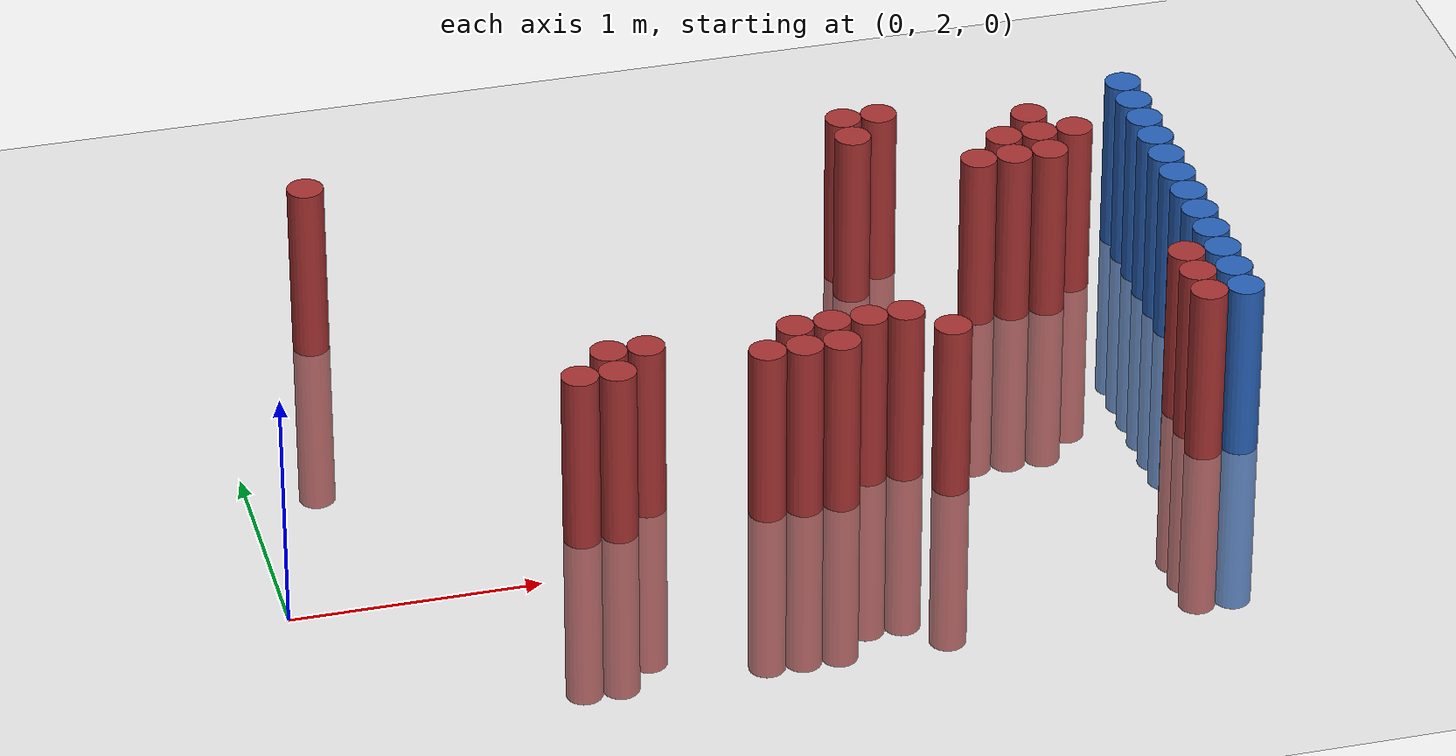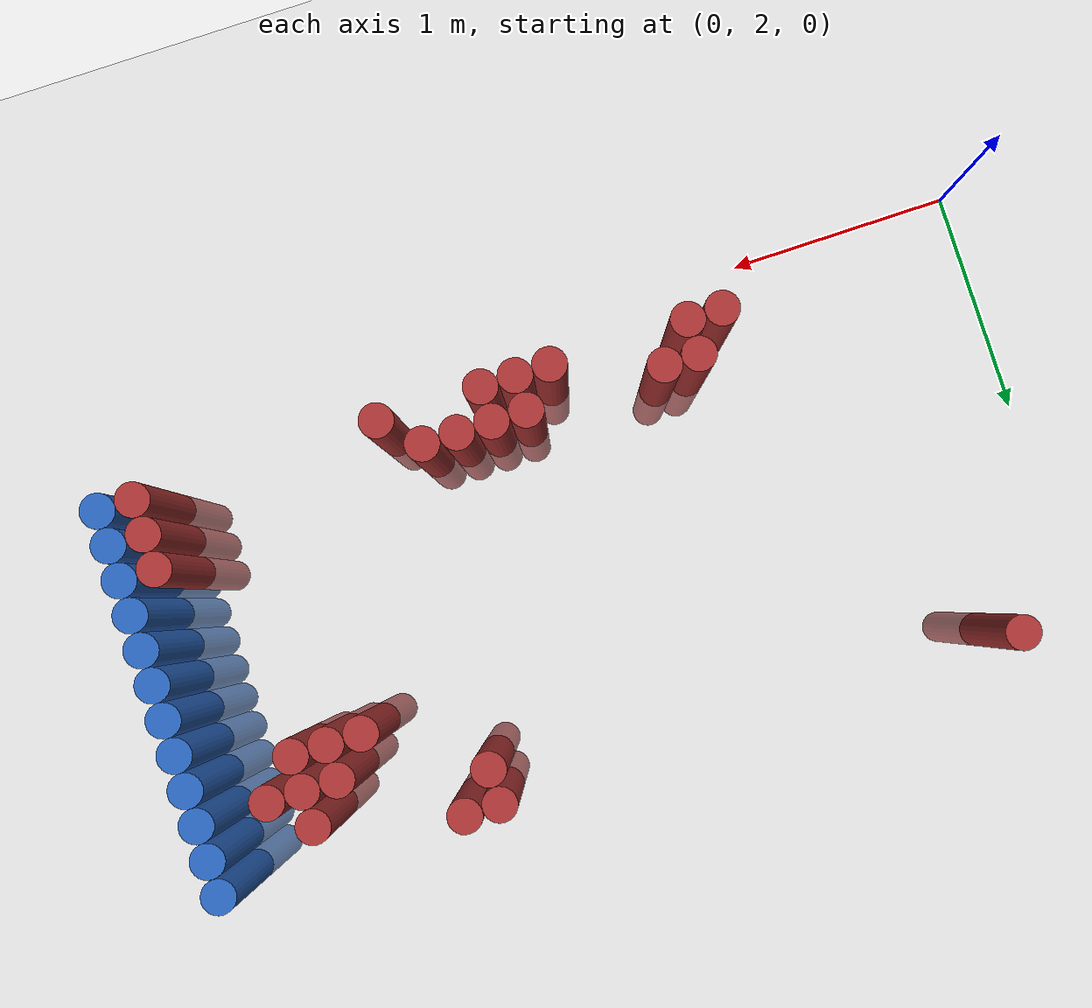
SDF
<sdf version="1.6">
 <world name="default">
  <model name="ground_plane">
   <static>1</static>
   <link name="link">
    <collision name="collision">
     <geometry><plane><normal>0 0 1</normal><size>100 100</size></plane></geometry>
     <surface><friction><ode><mu>100</mu><mu2>50</mu2></ode></friction></surface>
    </collision>
    <visual name="visual">
     <cast_shadows>0</cast_shadows>
     <geometry><plane><normal>0 0 1</normal><size>100 100</size></plane></geometry>
     <material>
      <script><uri>file://media/materials/scripts/gazebo.material</uri><name>Gazebo/Grey</name></script>
     </material>
    </visual>
   </link>
  </model>
  <model name="unit_cylinder_144">
   <static>1</static>
   <pose>3.925000 2.275000 0.000000 0.000000 0.000000 0.000000</pose>
   <link name="link">
    <inertial>
     <mass>1</mass>
     <inertia><ixx>0.145833</ixx><ixy>0</ixy><ixz>0</ixz><iyy>0.145833</iyy><iyz>0</iyz><izz>0.125</izz></inertia>
    </inertial>
    <collision name="collision">
     <geometry><cylinder><radius>0.075000</radius><length>1.5</length></cylinder></geometry>
    </collision>
    <visual name="visual">
     <geometry><cylinder><radius>0.075000</radius><length>1.5</length></cylinder></geometry>
     <material>
      <ambient>0.152000 0.379000 0.720000 1</ambient>
      <diffuse>0.152000 0.379000 0.720000 1</diffuse>
     </material>
     <material>
      <script><name>Gazebo/Grey</name><uri>file://media/materials/scripts/gazebo.material</uri></script>
     </material>
    </visual>
   </link>
  </model>
  <model name="unit_cylinder_146">
   <static>1</static>
   <pose>3.925000 2.425000 0.000000 0.000000 0.000000 0.000000</pose>
   <link name="link">
    <inertial>
     <mass>1</mass>
     <inertia><ixx>0.145833</ixx><ixy>0</ixy><ixz>0</ixz><iyy>0.145833</iyy><iyz>0</iyz><izz>0.125</izz></inertia>
    </inertial>
    <collision name="collision">
     <geometry><cylinder><radius>0.075000</radius><length>1.5</length></cylinder></geometry>
    </collision>
    <visual name="visual">
     <geometry><cylinder><radius>0.075000</radius><length>1.5</length></cylinder></geometry>
     <material>
      <ambient>0.152000 0.379000 0.720000 1</ambient>
      <diffuse>0.152000 0.379000 0.720000 1</diffuse>
     </material>
     <material>
      <script><name>Gazebo/Grey</name><uri>file://media/materials/scripts/gazebo.material</uri></script>
     </material>
    </visual>
   </link>
  </model>
  <model name="unit_cylinder_148">
   <static>1</static>
   <pose>3.925000 2.575000 0.000000 0.000000 0.000000 0.000000</pose>
   <link name="link">
    <inertial>
     <mass>1</mass>
     <inertia><ixx>0.145833</ixx><ixy>0</ixy><ixz>0</ixz><iyy>0.145833</iyy><iyz>0</iyz><izz>0.125</izz></inertia>
    </inertial>
    <collision name="collision">
     <geometry><cylinder><radius>0.075000</radius><length>1.5</length></cylinder></geometry>
    </collision>
    <visual name="visual">
     <geometry><cylinder><radius>0.075000</radius><length>1.5</length></cylinder></geometry>
     <material>
      <ambient>0.152000 0.379000 0.720000 1</ambient>
      <diffuse>0.152000 0.379000 0.720000 1</diffuse>
     </material>
     <material>
      <script><name>Gazebo/Grey</name><uri>file://media/materials/scripts/gazebo.material</uri></script>
     </material>
    </visual>
   </link>
  </model>
  <model name="unit_cylinder_150">
   <static>1</static>
   <pose>3.925000 2.725000 0.000000 0.000000 0.000000 0.000000</pose>
   <link name="link">
    <inertial>
     <mass>1</mass>
     <inertia><ixx>0.145833</ixx><ixy>0</ixy><ixz>0</ixz><iyy>0.145833</iyy><iyz>0</iyz><izz>0.125</izz></inertia>
    </inertial>
    <collision name="collision">
     <geometry><cylinder><radius>0.075000</radius><length>1.5</length></cylinder></geometry>
    </collision>
    <visual name="visual">
     <geometry><cylinder><radius>0.075000</radius><length>1.5</length></cylinder></geometry>
     <material>
      <ambient>0.152000 0.379000 0.720000 1</ambient>
      <diffuse>0.152000 0.379000 0.720000 1</diffuse>
     </material>
     <material>
      <script><name>Gazebo/Grey</name><uri>file://media/materials/scripts/gazebo.material</uri></script>
     </material>
    </visual>
   </link>
  </model>
  <model name="unit_cylinder_152">
   <static>1</static>
   <pose>3.925000 2.875000 0.000000 0.000000 0.000000 0.000000</pose>
   <link name="link">
    <inertial>
     <mass>1</mass>
     <inertia><ixx>0.145833</ixx><ixy>0</ixy><ixz>0</ixz><iyy>0.145833</iyy><iyz>0</iyz><izz>0.125</izz></inertia>
    </inertial>
    <collision name="collision">
     <geometry><cylinder><radius>0.075000</radius><length>1.5</length></cylinder></geometry>
    </collision>
    <visual name="visual">
     <geometry><cylinder><radius>0.075000</radius><length>1.5</length></cylinder></geometry>
     <material>
      <ambient>0.152000 0.379000 0.720000 1</ambient>
      <diffuse>0.152000 0.379000 0.720000 1</diffuse>
     </material>
     <material>
      <script><name>Gazebo/Grey</name><uri>file://media/materials/scripts/gazebo.material</uri></script>
     </material>
    </visual>
   </link>
  </model>
  <model name="unit_cylinder_154">
   <static>1</static>
   <pose>3.925000 3.025000 0.000000 0.000000 0.000000 0.000000</pose>
   <link name="link">
    <inertial>
     <mass>1</mass>
     <inertia><ixx>0.145833</ixx><ixy>0</ixy><ixz>0</ixz><iyy>0.145833</iyy><iyz>0</iyz><izz>0.125</izz></inertia>
    </inertial>
    <collision name="collision">
     <geometry><cylinder><radius>0.075000</radius><length>1.5</length></cylinder></geometry>
    </collision>
    <visual name="visual">
     <geometry><cylinder><radius>0.075000</radius><length>1.5</length></cylinder></geometry>
     <material>
      <ambient>0.152000 0.379000 0.720000 1</ambient>
      <diffuse>0.152000 0.379000 0.720000 1</diffuse>
     </material>
     <material>
      <script><name>Gazebo/Grey</name><uri>file://media/materials/scripts/gazebo.material</uri></script>
     </material>
    </visual>
   </link>
  </model>
  <model name="unit_cylinder_156">
   <static>1</static>
   <pose>3.925000 3.175000 0.000000 0.000000 0.000000 0.000000</pose>
   <link name="link">
    <inertial>
     <mass>1</mass>
     <inertia><ixx>0.145833</ixx><ixy>0</ixy><ixz>0</ixz><iyy>0.145833</iyy><iyz>0</iyz><izz>0.125</izz></inertia>
    </inertial>
    <collision name="collision">
     <geometry><cylinder><radius>0.075000</radius><length>1.5</length></cylinder></geometry>
    </collision>
    <visual name="visual">
     <geometry><cylinder><radius>0.075000</radius><length>1.5</length></cylinder></geometry>
     <material>
      <ambient>0.152000 0.379000 0.720000 1</ambient>
      <diffuse>0.152000 0.379000 0.720000 1</diffuse>
     </material>
     <material>
      <script><name>Gazebo/Grey</name><uri>file://media/materials/scripts/gazebo.material</uri></script>
     </material>
    </visual>
   </link>
  </model>
  <model name="unit_cylinder_158">
   <static>1</static>
   <pose>3.925000 3.325000 0.000000 0.000000 0.000000 0.000000</pose>
   <link name="link">
    <inertial>
     <mass>1</mass>
     <inertia><ixx>0.145833</ixx><ixy>0</ixy><ixz>0</ixz><iyy>0.145833</iyy><iyz>0</iyz><izz>0.125</izz></inertia>
    </inertial>
    <collision name="collision">
     <geometry><cylinder><radius>0.075000</radius><length>1.5</length></cylinder></geometry>
    </collision>
    <visual name="visual">
     <geometry><cylinder><radius>0.075000</radius><length>1.5</length></cylinder></geometry>
     <material>
      <ambient>0.152000 0.379000 0.720000 1</ambient>
      <diffuse>0.152000 0.379000 0.720000 1</diffuse>
     </material>
     <material>
      <script><name>Gazebo/Grey</name><uri>file://media/materials/scripts/gazebo.material</uri></script>
     </material>
    </visual>
   </link>
  </model>
  <model name="unit_cylinder_160">
   <static>1</static>
   <pose>3.925000 3.475000 0.000000 0.000000 0.000000 0.000000</pose>
   <link name="link">
    <inertial>
     <mass>1</mass>
     <inertia><ixx>0.145833</ixx><ixy>0</ixy><ixz>0</ixz><iyy>0.145833</iyy><iyz>0</iyz><izz>0.125</izz></inertia>
    </inertial>
    <collision name="collision">
     <geometry><cylinder><radius>0.075000</radius><length>1.5</length></cylinder></geometry>
    </collision>
    <visual name="visual">
     <geometry><cylinder><radius>0.075000</radius><length>1.5</length></cylinder></geometry>
     <material>
      <ambient>0.152000 0.379000 0.720000 1</ambient>
      <diffuse>0.152000 0.379000 0.720000 1</diffuse>
     </material>
     <material>
      <script><name>Gazebo/Grey</name><uri>file://media/materials/scripts/gazebo.material</uri></script>
     </material>
    </visual>
   </link>
  </model>
  <model name="unit_cylinder_162">
   <static>1</static>
   <pose>3.925000 3.625000 0.000000 0.000000 0.000000 0.000000</pose>
   <link name="link">
    <inertial>
     <mass>1</mass>
     <inertia><ixx>0.145833</ixx><ixy>0</ixy><ixz>0</ixz><iyy>0.145833</iyy><iyz>0</iyz><izz>0.125</izz></inertia>
    </inertial>
    <collision name="collision">
     <geometry><cylinder><radius>0.075000</radius><length>1.5</length></cylinder></geometry>
    </collision>
    <visual name="visual">
     <geometry><cylinder><radius>0.075000</radius><length>1.5</length></cylinder></geometry>
     <material>
      <ambient>0.152000 0.379000 0.720000 1</ambient>
      <diffuse>0.152000 0.379000 0.720000 1</diffuse>
     </material>
     <material>
      <script><name>Gazebo/Grey</name><uri>file://media/materials/scripts/gazebo.material</uri></script>
     </material>
    </visual>
   </link>
  </model>
  <model name="unit_cylinder_164">
   <static>1</static>
   <pose>3.925000 3.775000 0.000000 0.000000 0.000000 0.000000</pose>
   <link name="link">
    <inertial>
     <mass>1</mass>
     <inertia><ixx>0.145833</ixx><ixy>0</ixy><ixz>0</ixz><iyy>0.145833</iyy><iyz>0</iyz><izz>0.125</izz></inertia>
    </inertial>
    <collision name="collision">
     <geometry><cylinder><radius>0.075000</radius><length>1.5</length></cylinder></geometry>
    </collision>
    <visual name="visual">
     <geometry><cylinder><radius>0.075000</radius><length>1.5</length></cylinder></geometry>
     <material>
      <ambient>0.152000 0.379000 0.720000 1</ambient>
      <diffuse>0.152000 0.379000 0.720000 1</diffuse>
     </material>
     <material>
      <script><name>Gazebo/Grey</name><uri>file://media/materials/scripts/gazebo.material</uri></script>
     </material>
    </visual>
   </link>
  </model>
  <model name="unit_cylinder_166">
   <static>1</static>
   <pose>3.925000 3.925000 0.000000 0.000000 0.000000 0.000000</pose>
   <link name="link">
    <inertial>
     <mass>1</mass>
     <inertia><ixx>0.145833</ixx><ixy>0</ixy><ixz>0</ixz><iyy>0.145833</iyy><iyz>0</iyz><izz>0.125</izz></inertia>
    </inertial>
    <collision name="collision">
     <geometry><cylinder><radius>0.075000</radius><length>1.5</length></cylinder></geometry>
    </collision>
    <visual name="visual">
     <geometry><cylinder><radius>0.075000</radius><length>1.5</length></cylinder></geometry>
     <material>
      <ambient>0.152000 0.379000 0.720000 1</ambient>
      <diffuse>0.152000 0.379000 0.720000 1</diffuse>
     </material>
     <material>
      <script><name>Gazebo/Grey</name><uri>file://media/materials/scripts/gazebo.material</uri></script>
     </material>
    </visual>
   </link>
  </model>
  <model name="unit_cylinder_395">
   <static>1</static>
   <pose>0.475000 3.925000 0.000000 0.000000 0.000000 0.000000</pose>
   <link name="link">
    <inertial>
     <mass>1</mass>
     <inertia><ixx>0.145833</ixx><ixy>0</ixy><ixz>0</ixz><iyy>0.145833</iyy><iyz>0</iyz><izz>0.125</izz></inertia>
    </inertial>
    <collision name="collision">
     <geometry><cylinder><radius>0.075000</radius><length>1.5</length></cylinder></geometry>
    </collision>
    <visual name="visual">
     <geometry><cylinder><radius>0.075000</radius><length>1.5</length></cylinder></geometry>
     <material>
      <ambient>0.648000 0.192000 0.192000 1</ambient>
      <diffuse>0.648000 0.192000 0.192000 1</diffuse>
     </material>
     <material>
      <script><name>Gazebo/Grey</name><uri>file://media/materials/scripts/gazebo.material</uri></script>
     </material>
    </visual>
   </link>
  </model>
  <model name="unit_cylinder_412">
   <static>1</static>
   <pose>1.225000 2.275000 0.000000 0.000000 0.000000 0.000000</pose>
   <link name="link">
    <inertial>
     <mass>1</mass>
     <inertia><ixx>0.145833</ixx><ixy>0</ixy><ixz>0</ixz><iyy>0.145833</iyy><iyz>0</iyz><izz>0.125</izz></inertia>
    </inertial>
    <collision name="collision">
     <geometry><cylinder><radius>0.075000</radius><length>1.5</length></cylinder></geometry>
    </collision>
    <visual name="visual">
     <geometry><cylinder><radius>0.075000</radius><length>1.5</length></cylinder></geometry>
     <material>
      <ambient>0.648000 0.192000 0.192000 1</ambient>
      <diffuse>0.648000 0.192000 0.192000 1</diffuse>
     </material>
     <material>
      <script><name>Gazebo/Grey</name><uri>file://media/materials/scripts/gazebo.material</uri></script>
     </material>
    </visual>
   </link>
  </model>
  <model name="unit_cylinder_416">
   <static>1</static>
   <pose>1.375000 2.275000 0.000000 0.000000 0.000000 0.000000</pose>
   <link name="link">
    <inertial>
     <mass>1</mass>
     <inertia><ixx>0.145833</ixx><ixy>0</ixy><ixz>0</ixz><iyy>0.145833</iyy><iyz>0</iyz><izz>0.125</izz></inertia>
    </inertial>
    <collision name="collision">
     <geometry><cylinder><radius>0.075000</radius><length>1.5</length></cylinder></geometry>
    </collision>
    <visual name="visual">
     <geometry><cylinder><radius>0.075000</radius><length>1.5</length></cylinder></geometry>
     <material>
      <ambient>0.648000 0.192000 0.192000 1</ambient>
      <diffuse>0.648000 0.192000 0.192000 1</diffuse>
     </material>
     <material>
      <script><name>Gazebo/Grey</name><uri>file://media/materials/scripts/gazebo.material</uri></script>
     </material>
    </visual>
   </link>
  </model>
  <model name="unit_cylinder_417">
   <static>1</static>
   <pose>1.375000 2.425000 0.000000 0.000000 0.000000 0.000000</pose>
   <link name="link">
    <inertial>
     <mass>1</mass>
     <inertia><ixx>0.145833</ixx><ixy>0</ixy><ixz>0</ixz><iyy>0.145833</iyy><iyz>0</iyz><izz>0.125</izz></inertia>
    </inertial>
    <collision name="collision">
     <geometry><cylinder><radius>0.075000</radius><length>1.5</length></cylinder></geometry>
    </collision>
    <visual name="visual">
     <geometry><cylinder><radius>0.075000</radius><length>1.5</length></cylinder></geometry>
     <material>
      <ambient>0.648000 0.192000 0.192000 1</ambient>
      <diffuse>0.648000 0.192000 0.192000 1</diffuse>
     </material>
     <material>
      <script><name>Gazebo/Grey</name><uri>file://media/materials/scripts/gazebo.material</uri></script>
     </material>
    </visual>
   </link>
  </model>
  <model name="unit_cylinder_422">
   <static>1</static>
   <pose>1.525000 2.425000 0.000000 0.000000 0.000000 0.000000</pose>
   <link name="link">
    <inertial>
     <mass>1</mass>
     <inertia><ixx>0.145833</ixx><ixy>0</ixy><ixz>0</ixz><iyy>0.145833</iyy><iyz>0</iyz><izz>0.125</izz></inertia>
    </inertial>
    <collision name="collision">
     <geometry><cylinder><radius>0.075000</radius><length>1.5</length></cylinder></geometry>
    </collision>
    <visual name="visual">
     <geometry><cylinder><radius>0.075000</radius><length>1.5</length></cylinder></geometry>
     <material>
      <ambient>0.648000 0.192000 0.192000 1</ambient>
      <diffuse>0.648000 0.192000 0.192000 1</diffuse>
     </material>
     <material>
      <script><name>Gazebo/Grey</name><uri>file://media/materials/scripts/gazebo.material</uri></script>
     </material>
    </visual>
   </link>
  </model>
  <model name="unit_cylinder_435">
   <static>1</static>
   <pose>1.975000 2.275000 0.000000 0.000000 0.000000 0.000000</pose>
   <link name="link">
    <inertial>
     <mass>1</mass>
     <inertia><ixx>0.145833</ixx><ixy>0</ixy><ixz>0</ixz><iyy>0.145833</iyy><iyz>0</iyz><izz>0.125</izz></inertia>
    </inertial>
    <collision name="collision">
     <geometry><cylinder><radius>0.075000</radius><length>1.5</length></cylinder></geometry>
    </collision>
    <visual name="visual">
     <geometry><cylinder><radius>0.075000</radius><length>1.5</length></cylinder></geometry>
     <material>
      <ambient>0.648000 0.192000 0.192000 1</ambient>
      <diffuse>0.648000 0.192000 0.192000 1</diffuse>
     </material>
     <material>
      <script><name>Gazebo/Grey</name><uri>file://media/materials/scripts/gazebo.material</uri></script>
     </material>
    </visual>
   </link>
  </model>
  <model name="unit_cylinder_440">
   <static>1</static>
   <pose>2.125000 2.275000 0.000000 0.000000 0.000000 0.000000</pose>
   <link name="link">
    <inertial>
     <mass>1</mass>
     <inertia><ixx>0.145833</ixx><ixy>0</ixy><ixz>0</ixz><iyy>0.145833</iyy><iyz>0</iyz><izz>0.125</izz></inertia>
    </inertial>
    <collision name="collision">
     <geometry><cylinder><radius>0.075000</radius><length>1.5</length></cylinder></geometry>
    </collision>
    <visual name="visual">
     <geometry><cylinder><radius>0.075000</radius><length>1.5</length></cylinder></geometry>
     <material>
      <ambient>0.648000 0.192000 0.192000 1</ambient>
      <diffuse>0.648000 0.192000 0.192000 1</diffuse>
     </material>
     <material>
      <script><name>Gazebo/Grey</name><uri>file://media/materials/scripts/gazebo.material</uri></script>
     </material>
    </visual>
   </link>
  </model>
  <model name="unit_cylinder_441">
   <static>1</static>
   <pose>2.125000 2.425000 0.000000 0.000000 0.000000 0.000000</pose>
   <link name="link">
    <inertial>
     <mass>1</mass>
     <inertia><ixx>0.145833</ixx><ixy>0</ixy><ixz>0</ixz><iyy>0.145833</iyy><iyz>0</iyz><izz>0.125</izz></inertia>
    </inertial>
    <collision name="collision">
     <geometry><cylinder><radius>0.075000</radius><length>1.5</length></cylinder></geometry>
    </collision>
    <visual name="visual">
     <geometry><cylinder><radius>0.075000</radius><length>1.5</length></cylinder></geometry>
     <material>
      <ambient>0.648000 0.192000 0.192000 1</ambient>
      <diffuse>0.648000 0.192000 0.192000 1</diffuse>
     </material>
     <material>
      <script><name>Gazebo/Grey</name><uri>file://media/materials/scripts/gazebo.material</uri></script>
     </material>
    </visual>
   </link>
  </model>
  <model name="unit_cylinder_442">
   <static>1</static>
   <pose>2.275000 2.275000 0.000000 0.000000 0.000000 0.000000</pose>
   <link name="link">
    <inertial>
     <mass>1</mass>
     <inertia><ixx>0.145833</ixx><ixy>0</ixy><ixz>0</ixz><iyy>0.145833</iyy><iyz>0</iyz><izz>0.125</izz></inertia>
    </inertial>
    <collision name="collision">
     <geometry><cylinder><radius>0.075000</radius><length>1.5</length></cylinder></geometry>
    </collision>
    <visual name="visual">
     <geometry><cylinder><radius>0.075000</radius><length>1.5</length></cylinder></geometry>
     <material>
      <ambient>0.648000 0.192000 0.192000 1</ambient>
      <diffuse>0.648000 0.192000 0.192000 1</diffuse>
     </material>
     <material>
      <script><name>Gazebo/Grey</name><uri>file://media/materials/scripts/gazebo.material</uri></script>
     </material>
    </visual>
   </link>
  </model>
  <model name="unit_cylinder_443">
   <static>1</static>
   <pose>2.275000 2.425000 0.000000 0.000000 0.000000 0.000000</pose>
   <link name="link">
    <inertial>
     <mass>1</mass>
     <inertia><ixx>0.145833</ixx><ixy>0</ixy><ixz>0</ixz><iyy>0.145833</iyy><iyz>0</iyz><izz>0.125</izz></inertia>
    </inertial>
    <collision name="collision">
     <geometry><cylinder><radius>0.075000</radius><length>1.5</length></cylinder></geometry>
    </collision>
    <visual name="visual">
     <geometry><cylinder><radius>0.075000</radius><length>1.5</length></cylinder></geometry>
     <material>
      <ambient>0.648000 0.192000 0.192000 1</ambient>
      <diffuse>0.648000 0.192000 0.192000 1</diffuse>
     </material>
     <material>
      <script><name>Gazebo/Grey</name><uri>file://media/materials/scripts/gazebo.material</uri></script>
     </material>
    </visual>
   </link>
  </model>
  <model name="unit_cylinder_446">
   <static>1</static>
   <pose>2.425000 2.425000 0.000000 0.000000 0.000000 0.000000</pose>
   <link name="link">
    <inertial>
     <mass>1</mass>
     <inertia><ixx>0.145833</ixx><ixy>0</ixy><ixz>0</ixz><iyy>0.145833</iyy><iyz>0</iyz><izz>0.125</izz></inertia>
    </inertial>
    <collision name="collision">
     <geometry><cylinder><radius>0.075000</radius><length>1.5</length></cylinder></geometry>
    </collision>
    <visual name="visual">
     <geometry><cylinder><radius>0.075000</radius><length>1.5</length></cylinder></geometry>
     <material>
      <ambient>0.648000 0.192000 0.192000 1</ambient>
      <diffuse>0.648000 0.192000 0.192000 1</diffuse>
     </material>
     <material>
      <script><name>Gazebo/Grey</name><uri>file://media/materials/scripts/gazebo.material</uri></script>
     </material>
    </visual>
   </link>
  </model>
  <model name="unit_cylinder_456">
   <static>1</static>
   <pose>2.575000 2.425000 0.000000 0.000000 0.000000 0.000000</pose>
   <link name="link">
    <inertial>
     <mass>1</mass>
     <inertia><ixx>0.145833</ixx><ixy>0</ixy><ixz>0</ixz><iyy>0.145833</iyy><iyz>0</iyz><izz>0.125</izz></inertia>
    </inertial>
    <collision name="collision">
     <geometry><cylinder><radius>0.075000</radius><length>1.5</length></cylinder></geometry>
    </collision>
    <visual name="visual">
     <geometry><cylinder><radius>0.075000</radius><length>1.5</length></cylinder></geometry>
     <material>
      <ambient>0.648000 0.192000 0.192000 1</ambient>
      <diffuse>0.648000 0.192000 0.192000 1</diffuse>
     </material>
     <material>
      <script><name>Gazebo/Grey</name><uri>file://media/materials/scripts/gazebo.material</uri></script>
     </material>
    </visual>
   </link>
  </model>
  <model name="unit_cylinder_467">
   <static>1</static>
   <pose>2.725000 2.275000 0.000000 0.000000 0.000000 0.000000</pose>
   <link name="link">
    <inertial>
     <mass>1</mass>
     <inertia><ixx>0.145833</ixx><ixy>0</ixy><ixz>0</ixz><iyy>0.145833</iyy><iyz>0</iyz><izz>0.125</izz></inertia>
    </inertial>
    <collision name="collision">
     <geometry><cylinder><radius>0.075000</radius><length>1.5</length></cylinder></geometry>
    </collision>
    <visual name="visual">
     <geometry><cylinder><radius>0.075000</radius><length>1.5</length></cylinder></geometry>
     <material>
      <ambient>0.648000 0.192000 0.192000 1</ambient>
      <diffuse>0.648000 0.192000 0.192000 1</diffuse>
     </material>
     <material>
      <script><name>Gazebo/Grey</name><uri>file://media/materials/scripts/gazebo.material</uri></script>
     </material>
    </visual>
   </link>
  </model>
  <model name="unit_cylinder_468">
   <static>1</static>
   <pose>2.725000 3.775000 0.000000 0.000000 0.000000 0.000000</pose>
   <link name="link">
    <inertial>
     <mass>1</mass>
     <inertia><ixx>0.145833</ixx><ixy>0</ixy><ixz>0</ixz><iyy>0.145833</iyy><iyz>0</iyz><izz>0.125</izz></inertia>
    </inertial>
    <collision name="collision">
     <geometry><cylinder><radius>0.075000</radius><length>1.5</length></cylinder></geometry>
    </collision>
    <visual name="visual">
     <geometry><cylinder><radius>0.075000</radius><length>1.5</length></cylinder></geometry>
     <material>
      <ambient>0.648000 0.192000 0.192000 1</ambient>
      <diffuse>0.648000 0.192000 0.192000 1</diffuse>
     </material>
     <material>
      <script><name>Gazebo/Grey</name><uri>file://media/materials/scripts/gazebo.material</uri></script>
     </material>
    </visual>
   </link>
  </model>
  <model name="unit_cylinder_469">
   <static>1</static>
   <pose>2.725000 3.925000 0.000000 0.000000 0.000000 0.000000</pose>
   <link name="link">
    <inertial>
     <mass>1</mass>
     <inertia><ixx>0.145833</ixx><ixy>0</ixy><ixz>0</ixz><iyy>0.145833</iyy><iyz>0</iyz><izz>0.125</izz></inertia>
    </inertial>
    <collision name="collision">
     <geometry><cylinder><radius>0.075000</radius><length>1.5</length></cylinder></geometry>
    </collision>
    <visual name="visual">
     <geometry><cylinder><radius>0.075000</radius><length>1.5</length></cylinder></geometry>
     <material>
      <ambient>0.648000 0.192000 0.192000 1</ambient>
      <diffuse>0.648000 0.192000 0.192000 1</diffuse>
     </material>
     <material>
      <script><name>Gazebo/Grey</name><uri>file://media/materials/scripts/gazebo.material</uri></script>
     </material>
    </visual>
   </link>
  </model>
  <model name="unit_cylinder_479">
   <static>1</static>
   <pose>2.875000 3.925000 0.000000 0.000000 0.000000 0.000000</pose>
   <link name="link">
    <inertial>
     <mass>1</mass>
     <inertia><ixx>0.145833</ixx><ixy>0</ixy><ixz>0</ixz><iyy>0.145833</iyy><iyz>0</iyz><izz>0.125</izz></inertia>
    </inertial>
    <collision name="collision">
     <geometry><cylinder><radius>0.075000</radius><length>1.5</length></cylinder></geometry>
    </collision>
    <visual name="visual">
     <geometry><cylinder><radius>0.075000</radius><length>1.5</length></cylinder></geometry>
     <material>
      <ambient>0.648000 0.192000 0.192000 1</ambient>
      <diffuse>0.648000 0.192000 0.192000 1</diffuse>
     </material>
     <material>
      <script><name>Gazebo/Grey</name><uri>file://media/materials/scripts/gazebo.material</uri></script>
     </material>
    </visual>
   </link>
  </model>
  <model name="unit_cylinder_485">
   <static>1</static>
   <pose>3.175000 3.475000 0.000000 0.000000 0.000000 0.000000</pose>
   <link name="link">
    <inertial>
     <mass>1</mass>
     <inertia><ixx>0.145833</ixx><ixy>0</ixy><ixz>0</ixz><iyy>0.145833</iyy><iyz>0</iyz><izz>0.125</izz></inertia>
    </inertial>
    <collision name="collision">
     <geometry><cylinder><radius>0.075000</radius><length>1.5</length></cylinder></geometry>
    </collision>
    <visual name="visual">
     <geometry><cylinder><radius>0.075000</radius><length>1.5</length></cylinder></geometry>
     <material>
      <ambient>0.648000 0.192000 0.192000 1</ambient>
      <diffuse>0.648000 0.192000 0.192000 1</diffuse>
     </material>
     <material>
      <script><name>Gazebo/Grey</name><uri>file://media/materials/scripts/gazebo.material</uri></script>
     </material>
    </visual>
   </link>
  </model>
  <model name="unit_cylinder_486">
   <static>1</static>
   <pose>3.325000 3.475000 0.000000 0.000000 0.000000 0.000000</pose>
   <link name="link">
    <inertial>
     <mass>1</mass>
     <inertia><ixx>0.145833</ixx><ixy>0</ixy><ixz>0</ixz><iyy>0.145833</iyy><iyz>0</iyz><izz>0.125</izz></inertia>
    </inertial>
    <collision name="collision">
     <geometry><cylinder><radius>0.075000</radius><length>1.5</length></cylinder></geometry>
    </collision>
    <visual name="visual">
     <geometry><cylinder><radius>0.075000</radius><length>1.5</length></cylinder></geometry>
     <material>
      <ambient>0.648000 0.192000 0.192000 1</ambient>
      <diffuse>0.648000 0.192000 0.192000 1</diffuse>
     </material>
     <material>
      <script><name>Gazebo/Grey</name><uri>file://media/materials/scripts/gazebo.material</uri></script>
     </material>
    </visual>
   </link>
  </model>
  <model name="unit_cylinder_487">
   <static>1</static>
   <pose>3.325000 3.625000 0.000000 0.000000 0.000000 0.000000</pose>
   <link name="link">
    <inertial>
     <mass>1</mass>
     <inertia><ixx>0.145833</ixx><ixy>0</ixy><ixz>0</ixz><iyy>0.145833</iyy><iyz>0</iyz><izz>0.125</izz></inertia>
    </inertial>
    <collision name="collision">
     <geometry><cylinder><radius>0.075000</radius><length>1.5</length></cylinder></geometry>
    </collision>
    <visual name="visual">
     <geometry><cylinder><radius>0.075000</radius><length>1.5</length></cylinder></geometry>
     <material>
      <ambient>0.648000 0.192000 0.192000 1</ambient>
      <diffuse>0.648000 0.192000 0.192000 1</diffuse>
     </material>
     <material>
      <script><name>Gazebo/Grey</name><uri>file://media/materials/scripts/gazebo.material</uri></script>
     </material>
    </visual>
   </link>
  </model>
  <model name="unit_cylinder_488">
   <static>1</static>
   <pose>3.475000 3.475000 0.000000 0.000000 0.000000 0.000000</pose>
   <link name="link">
    <inertial>
     <mass>1</mass>
     <inertia><ixx>0.145833</ixx><ixy>0</ixy><ixz>0</ixz><iyy>0.145833</iyy><iyz>0</iyz><izz>0.125</izz></inertia>
    </inertial>
    <collision name="collision">
     <geometry><cylinder><radius>0.075000</radius><length>1.5</length></cylinder></geometry>
    </collision>
    <visual name="visual">
     <geometry><cylinder><radius>0.075000</radius><length>1.5</length></cylinder></geometry>
     <material>
      <ambient>0.648000 0.192000 0.192000 1</ambient>
      <diffuse>0.648000 0.192000 0.192000 1</diffuse>
     </material>
     <material>
      <script><name>Gazebo/Grey</name><uri>file://media/materials/scripts/gazebo.material</uri></script>
     </material>
    </visual>
   </link>
  </model>
  <model name="unit_cylinder_489">
   <static>1</static>
   <pose>3.475000 3.625000 0.000000 0.000000 0.000000 0.000000</pose>
   <link name="link">
    <inertial>
     <mass>1</mass>
     <inertia><ixx>0.145833</ixx><ixy>0</ixy><ixz>0</ixz><iyy>0.145833</iyy><iyz>0</iyz><izz>0.125</izz></inertia>
    </inertial>
    <collision name="collision">
     <geometry><cylinder><radius>0.075000</radius><length>1.5</length></cylinder></geometry>
    </collision>
    <visual name="visual">
     <geometry><cylinder><radius>0.075000</radius><length>1.5</length></cylinder></geometry>
     <material>
      <ambient>0.648000 0.192000 0.192000 1</ambient>
      <diffuse>0.648000 0.192000 0.192000 1</diffuse>
     </material>
     <material>
      <script><name>Gazebo/Grey</name><uri>file://media/materials/scripts/gazebo.material</uri></script>
     </material>
    </visual>
   </link>
  </model>
  <model name="unit_cylinder_490">
   <static>1</static>
   <pose>3.475000 3.775000 0.000000 0.000000 0.000000 0.000000</pose>
   <link name="link">
    <inertial>
     <mass>1</mass>
     <inertia><ixx>0.145833</ixx><ixy>0</ixy><ixz>0</ixz><iyy>0.145833</iyy><iyz>0</iyz><izz>0.125</izz></inertia>
    </inertial>
    <collision name="collision">
     <geometry><cylinder><radius>0.075000</radius><length>1.5</length></cylinder></geometry>
    </collision>
    <visual name="visual">
     <geometry><cylinder><radius>0.075000</radius><length>1.5</length></cylinder></geometry>
     <material>
      <ambient>0.648000 0.192000 0.192000 1</ambient>
      <diffuse>0.648000 0.192000 0.192000 1</diffuse>
     </material>
     <material>
      <script><name>Gazebo/Grey</name><uri>file://media/materials/scripts/gazebo.material</uri></script>
     </material>
    </visual>
   </link>
  </model>
  <model name="unit_cylinder_491">
   <static>1</static>
   <pose>3.625000 3.625000 0.000000 0.000000 0.000000 0.000000</pose>
   <link name="link">
    <inertial>
     <mass>1</mass>
     <inertia><ixx>0.145833</ixx><ixy>0</ixy><ixz>0</ixz><iyy>0.145833</iyy><iyz>0</iyz><izz>0.125</izz></inertia>
    </inertial>
    <collision name="collision">
     <geometry><cylinder><radius>0.075000</radius><length>1.5</length></cylinder></geometry>
    </collision>
    <visual name="visual">
     <geometry><cylinder><radius>0.075000</radius><length>1.5</length></cylinder></geometry>
     <material>
      <ambient>0.648000 0.192000 0.192000 1</ambient>
      <diffuse>0.648000 0.192000 0.192000 1</diffuse>
     </material>
     <material>
      <script><name>Gazebo/Grey</name><uri>file://media/materials/scripts/gazebo.material</uri></script>
     </material>
    </visual>
   </link>
  </model>
  <model name="unit_cylinder_501">
   <static>1</static>
   <pose>3.775000 2.275000 0.000000 0.000000 0.000000 0.000000</pose>
   <link name="link">
    <inertial>
     <mass>1</mass>
     <inertia><ixx>0.145833</ixx><ixy>0</ixy><ixz>0</ixz><iyy>0.145833</iyy><iyz>0</iyz><izz>0.125</izz></inertia>
    </inertial>
    <collision name="collision">
     <geometry><cylinder><radius>0.075000</radius><length>1.5</length></cylinder></geometry>
    </collision>
    <visual name="visual">
     <geometry><cylinder><radius>0.075000</radius><length>1.5</length></cylinder></geometry>
     <material>
      <ambient>0.648000 0.192000 0.192000 1</ambient>
      <diffuse>0.648000 0.192000 0.192000 1</diffuse>
     </material>
     <material>
      <script><name>Gazebo/Grey</name><uri>file://media/materials/scripts/gazebo.material</uri></script>
     </material>
    </visual>
   </link>
  </model>
  <model name="unit_cylinder_502">
   <static>1</static>
   <pose>3.775000 2.425000 0.000000 0.000000 0.000000 0.000000</pose>
   <link name="link">
    <inertial>
     <mass>1</mass>
     <inertia><ixx>0.145833</ixx><ixy>0</ixy><ixz>0</ixz><iyy>0.145833</iyy><iyz>0</iyz><izz>0.125</izz></inertia>
    </inertial>
    <collision name="collision">
     <geometry><cylinder><radius>0.075000</radius><length>1.5</length></cylinder></geometry>
    </collision>
    <visual name="visual">
     <geometry><cylinder><radius>0.075000</radius><length>1.5</length></cylinder></geometry>
     <material>
      <ambient>0.648000 0.192000 0.192000 1</ambient>
      <diffuse>0.648000 0.192000 0.192000 1</diffuse>
     </material>
     <material>
      <script><name>Gazebo/Grey</name><uri>file://media/materials/scripts/gazebo.material</uri></script>
     </material>
    </visual>
   </link>
  </model>
  <model name="unit_cylinder_503">
   <static>1</static>
   <pose>3.775000 2.575000 0.000000 0.000000 0.000000 0.000000</pose>
   <link name="link">
    <inertial>
     <mass>1</mass>
     <inertia><ixx>0.145833</ixx><ixy>0</ixy><ixz>0</ixz><iyy>0.145833</iyy><iyz>0</iyz><izz>0.125</izz></inertia>
    </inertial>
    <collision name="collision">
     <geometry><cylinder><radius>0.075000</radius><length>1.5</length></cylinder></geometry>
    </collision>
    <visual name="visual">
     <geometry><cylinder><radius>0.075000</radius><length>1.5</length></cylinder></geometry>
     <material>
      <ambient>0.648000 0.192000 0.192000 1</ambient>
      <diffuse>0.648000 0.192000 0.192000 1</diffuse>
     </material>
     <material>
      <script><name>Gazebo/Grey</name><uri>file://media/materials/scripts/gazebo.material</uri></script>
     </material>
    </visual>
   </link>
  </model>
  <model name="unit_cylinder_533">
   <static>1</static>
   <pose>3.925000 2.275000 0.000000 0.000000 0.000000 0.000000</pose>
   <link name="link">
    <inertial>
     <mass>1</mass>
     <inertia><ixx>0.145833</ixx><ixy>0</ixy><ixz>0</ixz><iyy>0.145833</iyy><iyz>0</iyz><izz>0.125</izz></inertia>
    </inertial>
    <collision name="collision">
     <geometry><cylinder><radius>0.075000</radius><length>1.5</length></cylinder></geometry>
    </collision>
    <visual name="visual">
     <geometry><cylinder><radius>0.075000</radius><length>1.5</length></cylinder></geometry>
     <material>
      <ambient>0.152000 0.379000 0.720000 1</ambient>
      <diffuse>0.152000 0.379000 0.720000 1</diffuse>
     </material>
     <material>
      <script><name>Gazebo/Grey</name><uri>file://media/materials/scripts/gazebo.material</uri></script>
     </material>
    </visual>
   </link>
  </model>
  <model name="unit_cylinder_534">
   <static>1</static>
   <pose>3.925000 2.425000 0.000000 0.000000 0.000000 0.000000</pose>
   <link name="link">
    <inertial>
     <mass>1</mass>
     <inertia><ixx>0.145833</ixx><ixy>0</ixy><ixz>0</ixz><iyy>0.145833</iyy><iyz>0</iyz><izz>0.125</izz></inertia>
    </inertial>
    <collision name="collision">
     <geometry><cylinder><radius>0.075000</radius><length>1.5</length></cylinder></geometry>
    </collision>
    <visual name="visual">
     <geometry><cylinder><radius>0.075000</radius><length>1.5</length></cylinder></geometry>
     <material>
      <ambient>0.152000 0.379000 0.720000 1</ambient>
      <diffuse>0.152000 0.379000 0.720000 1</diffuse>
     </material>
     <material>
      <script><name>Gazebo/Grey</name><uri>file://media/materials/scripts/gazebo.material</uri></script>
     </material>
    </visual>
   </link>
  </model>
  <model name="unit_cylinder_535">
   <static>1</static>
   <pose>3.925000 2.575000 0.000000 0.000000 0.000000 0.000000</pose>
   <link name="link">
    <inertial>
     <mass>1</mass>
     <inertia><ixx>0.145833</ixx><ixy>0</ixy><ixz>0</ixz><iyy>0.145833</iyy><iyz>0</iyz><izz>0.125</izz></inertia>
    </inertial>
    <collision name="collision">
     <geometry><cylinder><radius>0.075000</radius><length>1.5</length></cylinder></geometry>
    </collision>
    <visual name="visual">
     <geometry><cylinder><radius>0.075000</radius><length>1.5</length></cylinder></geometry>
     <material>
      <ambient>0.152000 0.379000 0.720000 1</ambient>
      <diffuse>0.152000 0.379000 0.720000 1</diffuse>
     </material>
     <material>
      <script><name>Gazebo/Grey</name><uri>file://media/materials/scripts/gazebo.material</uri></script>
     </material>
    </visual>
   </link>
  </model>
  <model name="unit_cylinder_536">
   <static>1</static>
   <pose>3.925000 2.725000 0.000000 0.000000 0.000000 0.000000</pose>
   <link name="link">
    <inertial>
     <mass>1</mass>
     <inertia><ixx>0.145833</ixx><ixy>0</ixy><ixz>0</ixz><iyy>0.145833</iyy><iyz>0</iyz><izz>0.125</izz></inertia>
    </inertial>
    <collision name="collision">
     <geometry><cylinder><radius>0.075000</radius><length>1.5</length></cylinder></geometry>
    </collision>
    <visual name="visual">
     <geometry><cylinder><radius>0.075000</radius><length>1.5</length></cylinder></geometry>
     <material>
      <ambient>0.152000 0.379000 0.720000 1</ambient>
      <diffuse>0.152000 0.379000 0.720000 1</diffuse>
     </material>
     <material>
      <script><name>Gazebo/Grey</name><uri>file://media/materials/scripts/gazebo.material</uri></script>
     </material>
    </visual>
   </link>
  </model>
  <model name="unit_cylinder_537">
   <static>1</static>
   <pose>3.925000 2.875000 0.000000 0.000000 0.000000 0.000000</pose>
   <link name="link">
    <inertial>
     <mass>1</mass>
     <inertia><ixx>0.145833</ixx><ixy>0</ixy><ixz>0</ixz><iyy>0.145833</iyy><iyz>0</iyz><izz>0.125</izz></inertia>
    </inertial>
    <collision name="collision">
     <geometry><cylinder><radius>0.075000</radius><length>1.5</length></cylinder></geometry>
    </collision>
    <visual name="visual">
     <geometry><cylinder><radius>0.075000</radius><length>1.5</length></cylinder></geometry>
     <material>
      <ambient>0.152000 0.379000 0.720000 1</ambient>
      <diffuse>0.152000 0.379000 0.720000 1</diffuse>
     </material>
     <material>
      <script><name>Gazebo/Grey</name><uri>file://media/materials/scripts/gazebo.material</uri></script>
     </material>
    </visual>
   </link>
  </model>
  <model name="unit_cylinder_538">
   <static>1</static>
   <pose>3.925000 3.025000 0.000000 0.000000 0.000000 0.000000</pose>
   <link name="link">
    <inertial>
     <mass>1</mass>
     <inertia><ixx>0.145833</ixx><ixy>0</ixy><ixz>0</ixz><iyy>0.145833</iyy><iyz>0</iyz><izz>0.125</izz></inertia>
    </inertial>
    <collision name="collision">
     <geometry><cylinder><radius>0.075000</radius><length>1.5</length></cylinder></geometry>
    </collision>
    <visual name="visual">
     <geometry><cylinder><radius>0.075000</radius><length>1.5</length></cylinder></geometry>
     <material>
      <ambient>0.152000 0.379000 0.720000 1</ambient>
      <diffuse>0.152000 0.379000 0.720000 1</diffuse>
     </material>
     <material>
      <script><name>Gazebo/Grey</name><uri>file://media/materials/scripts/gazebo.material</uri></script>
     </material>
    </visual>
   </link>
  </model>
  <model name="unit_cylinder_539">
   <static>1</static>
   <pose>3.925000 3.175000 0.000000 0.000000 0.000000 0.000000</pose>
   <link name="link">
    <inertial>
     <mass>1</mass>
     <inertia><ixx>0.145833</ixx><ixy>0</ixy><ixz>0</ixz><iyy>0.145833</iyy><iyz>0</iyz><izz>0.125</izz></inertia>
    </inertial>
    <collision name="collision">
     <geometry><cylinder><radius>0.075000</radius><length>1.5</length></cylinder></geometry>
    </collision>
    <visual name="visual">
     <geometry><cylinder><radius>0.075000</radius><length>1.5</length></cylinder></geometry>
     <material>
      <ambient>0.152000 0.379000 0.720000 1</ambient>
      <diffuse>0.152000 0.379000 0.720000 1</diffuse>
     </material>
     <material>
      <script><name>Gazebo/Grey</name><uri>file://media/materials/scripts/gazebo.material</uri></script>
     </material>
    </visual>
   </link>
  </model>
  <model name="unit_cylinder_540">
   <static>1</static>
   <pose>3.925000 3.325000 0.000000 0.000000 0.000000 0.000000</pose>
   <link name="link">
    <inertial>
     <mass>1</mass>
     <inertia><ixx>0.145833</ixx><ixy>0</ixy><ixz>0</ixz><iyy>0.145833</iyy><iyz>0</iyz><izz>0.125</izz></inertia>
    </inertial>
    <collision name="collision">
     <geometry><cylinder><radius>0.075000</radius><length>1.5</length></cylinder></geometry>
    </collision>
    <visual name="visual">
     <geometry><cylinder><radius>0.075000</radius><length>1.5</length></cylinder></geometry>
     <material>
      <ambient>0.152000 0.379000 0.720000 1</ambient>
      <diffuse>0.152000 0.379000 0.720000 1</diffuse>
     </material>
     <material>
      <script><name>Gazebo/Grey</name><uri>file://media/materials/scripts/gazebo.material</uri></script>
     </material>
    </visual>
   </link>
  </model>
  <model name="unit_cylinder_541">
   <static>1</static>
   <pose>3.925000 3.475000 0.000000 0.000000 0.000000 0.000000</pose>
   <link name="link">
    <inertial>
     <mass>1</mass>
     <inertia><ixx>0.145833</ixx><ixy>0</ixy><ixz>0</ixz><iyy>0.145833</iyy><iyz>0</iyz><izz>0.125</izz></inertia>
    </inertial>
    <collision name="collision">
     <geometry><cylinder><radius>0.075000</radius><length>1.5</length></cylinder></geometry>
    </collision>
    <visual name="visual">
     <geometry><cylinder><radius>0.075000</radius><length>1.5</length></cylinder></geometry>
     <material>
      <ambient>0.152000 0.379000 0.720000 1</ambient>
      <diffuse>0.152000 0.379000 0.720000 1</diffuse>
     </material>
     <material>
      <script><name>Gazebo/Grey</name><uri>file://media/materials/scripts/gazebo.material</uri></script>
     </material>
    </visual>
   </link>
  </model>
  <model name="unit_cylinder_542">
   <static>1</static>
   <pose>3.925000 3.625000 0.000000 0.000000 0.000000 0.000000</pose>
   <link name="link">
    <inertial>
     <mass>1</mass>
     <inertia><ixx>0.145833</ixx><ixy>0</ixy><ixz>0</ixz><iyy>0.145833</iyy><iyz>0</iyz><izz>0.125</izz></inertia>
    </inertial>
    <collision name="collision">
     <geometry><cylinder><radius>0.075000</radius><length>1.5</length></cylinder></geometry>
    </collision>
    <visual name="visual">
     <geometry><cylinder><radius>0.075000</radius><length>1.5</length></cylinder></geometry>
     <material>
      <ambient>0.152000 0.379000 0.720000 1</ambient>
      <diffuse>0.152000 0.379000 0.720000 1</diffuse>
     </material>
     <material>
      <script><name>Gazebo/Grey</name><uri>file://media/materials/scripts/gazebo.material</uri></script>
     </material>
    </visual>
   </link>
  </model>
  <model name="unit_cylinder_543">
   <static>1</static>
   <pose>3.925000 3.775000 0.000000 0.000000 0.000000 0.000000</pose>
   <link name="link">
    <inertial>
     <mass>1</mass>
     <inertia><ixx>0.145833</ixx><ixy>0</ixy><ixz>0</ixz><iyy>0.145833</iyy><iyz>0</iyz><izz>0.125</izz></inertia>
    </inertial>
    <collision name="collision">
     <geometry><cylinder><radius>0.075000</radius><length>1.5</length></cylinder></geometry>
    </collision>
    <visual name="visual">
     <geometry><cylinder><radius>0.075000</radius><length>1.5</length></cylinder></geometry>
     <material>
      <ambient>0.152000 0.379000 0.720000 1</ambient>
      <diffuse>0.152000 0.379000 0.720000 1</diffuse>
     </material>
     <material>
      <script><name>Gazebo/Grey</name><uri>file://media/materials/scripts/gazebo.material</uri></script>
     </material>
    </visual>
   </link>
  </model>
  <model name="unit_cylinder_544">
   <static>1</static>
   <pose>3.925000 3.925000 0.000000 0.000000 0.000000 0.000000</pose>
   <link name="link">
    <inertial>
     <mass>1</mass>
     <inertia><ixx>0.145833</ixx><ixy>0</ixy><ixz>0</ixz><iyy>0.145833</iyy><iyz>0</iyz><izz>0.125</izz></inertia>
    </inertial>
    <collision name="collision">
     <geometry><cylinder><radius>0.075000</radius><length>1.5</length></cylinder></geometry>
    </collision>
    <visual name="visual">
     <geometry><cylinder><radius>0.075000</radius><length>1.5</length></cylinder></geometry>
     <material>
      <ambient>0.152000 0.379000 0.720000 1</ambient>
      <diffuse>0.152000 0.379000 0.720000 1</diffuse>
     </material>
     <material>
      <script><name>Gazebo/Grey</name><uri>file://media/materials/scripts/gazebo.material</uri></script>
     </material>
    </visual>
   </link>
  </model>
 </world>
</sdf>
